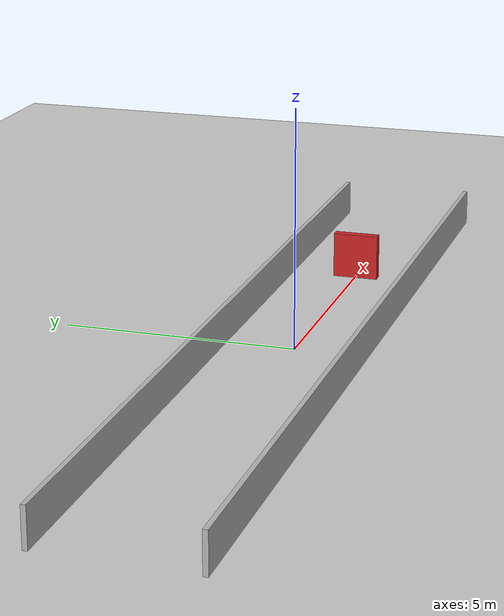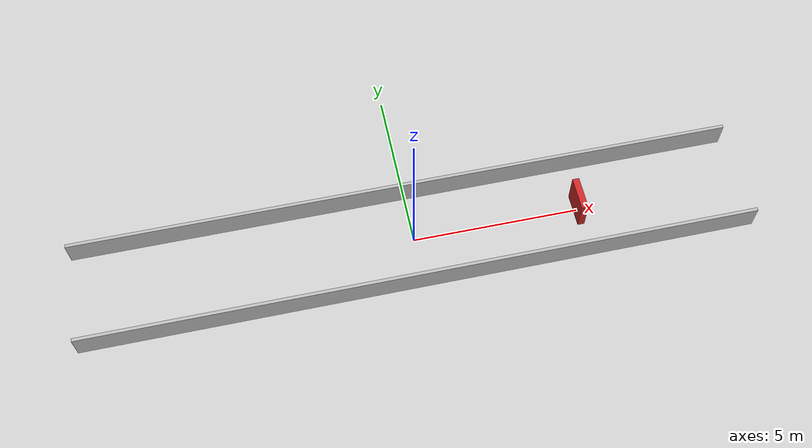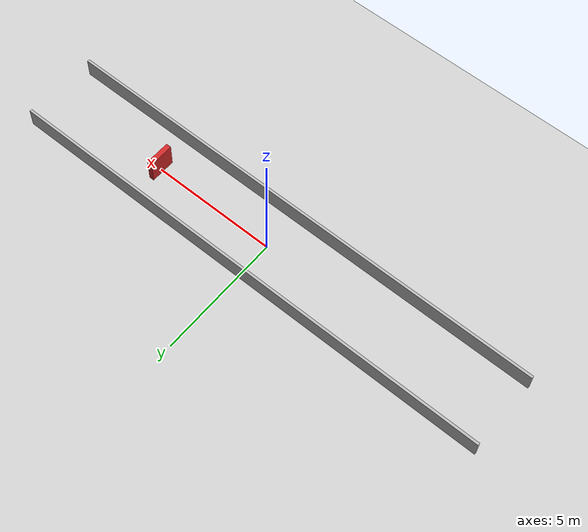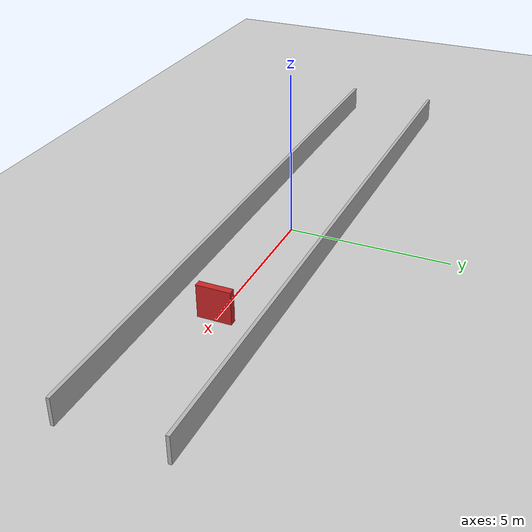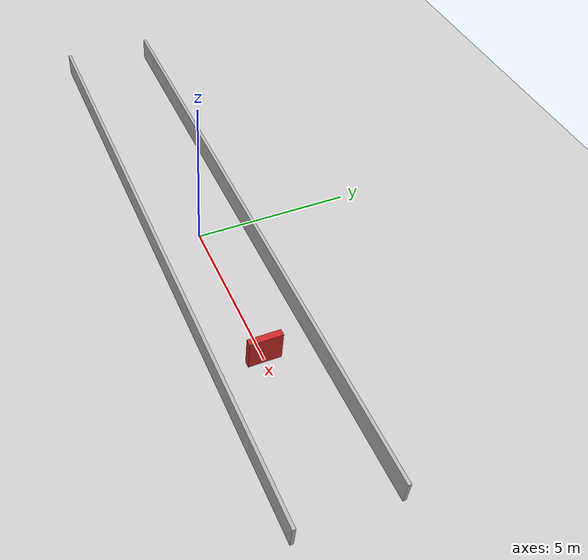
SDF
<?xml version="1.0" ?>
<sdf version="1.6">
  <world name="teknofest_parkur">
    <include>
      <uri>model://sun</uri>
    </include>
    <include>
      <uri>model://ground_plane</uri>
    </include>

    <!-- Kayar Engel (Genişlik: 1m, Hız: 20cm/s) -->
    <model name="kayar_engel">
      <pose>5 0 0.5 0 0 0</pose>
      <link name="link">
        <visual name="visual">
          <geometry>
            <box><size>0.2 1.0 1.0</size></box>
          </geometry>
          <material><script><name>Gazebo/Red</name></script></material>
        </visual>
        <collision name="collision">
          <geometry>
            <box><size>0.2 1.0 1.0</size></box>
          </geometry>
        </collision>
      </link>
      <!-- Basit Lineer Hareket Eklentisi (C++ kodu gerekir, burada temsilidir) -->
      <plugin name="slider_plugin" filename="libgazebo_ros_planar_move.so">
        <commandTopic>cmd_vel_engel</commandTopic>
        <odometryTopic>odom_engel</odometryTopic>
      </plugin>
    </model>

    <!-- Kırmızı Beyaz Parkur Sınırları (Örnek) -->
    <model name="sag_bariyer">
      <pose>0 -1.5 0.4 0 0 0</pose>
      <link name="link">
        <visual name="visual"><geometry><box><size>20 0.1 0.8</size></box></geometry></visual>
        <collision name="collision"><geometry><box><size>20 0.1 0.8</size></box></geometry></collision>
      </link>
      <static>true</static>
    </model>
    <model name="sol_bariyer">
      <pose>0 1.5 0.4 0 0 0</pose>
      <link name="link">
        <visual name="visual"><geometry><box><size>20 0.1 0.8</size></box></geometry></visual>
        <collision name="collision"><geometry><box><size>20 0.1 0.8</size></box></geometry></collision>
      </link>
      <static>true</static>
    </model>
  </world>
</sdf>
